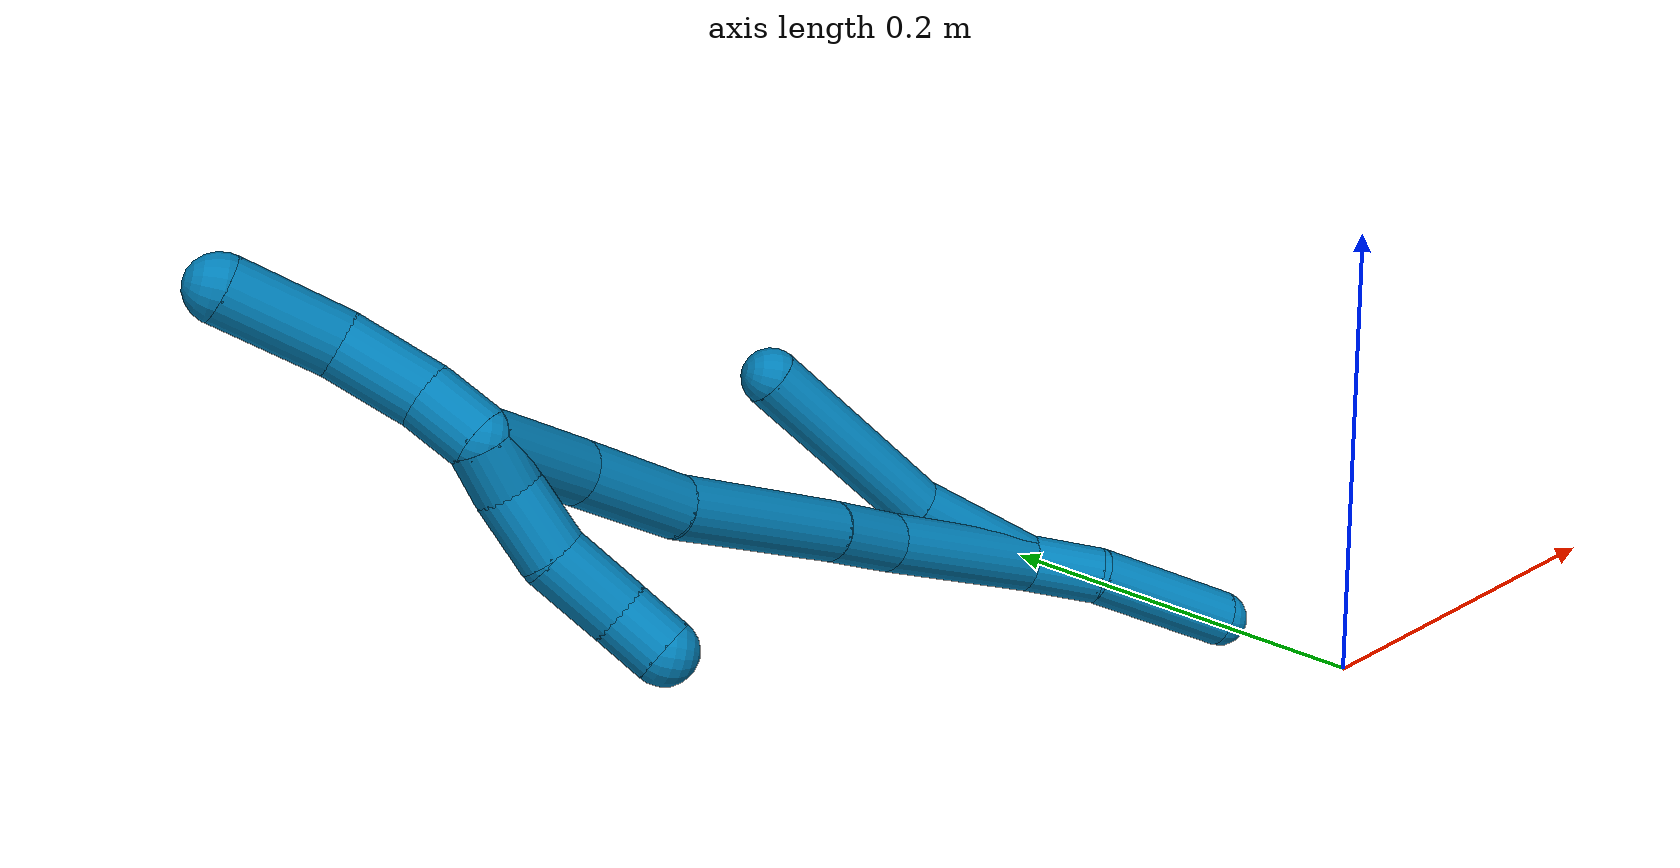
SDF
<sdf version="1.7">
 <world name="default">
  <model name="9">
   <static>0</static>
   <link name="9">
    <collision name="collision-cylinder-e_1_2_8">
     <pose>-0.006701 -0.003823 0.029467 0.129017 -0.221822 -0.014388</pose>
     <geometry><cylinder><radius>0.0125</radius><length>0.06092</length></cylinder></geometry>
     <surface>
      <friction><ode><mu>1.16</mu><mu2>1.16</mu2><slip1>0</slip1><slip2>0</slip2></ode></friction>
      <contact><ode><kp>1e+06</kp><kd>1</kd><max_vel>0</max_vel><min_depth>0.001</min_depth></ode></contact>
     </surface>
    </collision>
    <visual name="visual-cylinder-e_1_2_8">
     <pose>-0.006701 -0.003823 0.029467 0.129017 -0.221822 -0.014388</pose>
     <geometry><cylinder><radius>0.0125</radius><length>0.06092</length></cylinder></geometry>
     <material><ambient>0 0.490196 0.709804 1</ambient></material>
    </visual>
    <collision name="collision-cylinder-e_2_8_6">
     <pose>-0.031134 -0.017806 0.098509 0.251302 -0.409435 -0.052441</pose>
     <geometry><cylinder><radius>0.0125</radius><length>0.08908</length></cylinder></geometry>
     <surface>
      <friction><ode><mu>1.16</mu><mu2>1.16</mu2><slip1>0</slip1><slip2>0</slip2></ode></friction>
      <contact><ode><kp>1e+06</kp><kd>1</kd><max_vel>0</max_vel><min_depth>0.001</min_depth></ode></contact>
     </surface>
    </collision>
    <visual name="visual-cylinder-e_2_8_6">
     <pose>-0.031134 -0.017806 0.098509 0.251302 -0.409435 -0.052441</pose>
     <geometry><cylinder><radius>0.0125</radius><length>0.08908</length></cylinder></geometry>
     <material><ambient>0 0.490196 0.709804 1</ambient></material>
    </visual>
    <collision name="collision-cylinder-e_1_2_9">
     <pose>-0.003041 0.003278 -0.016124 -2.941 -0.182768 1.47728</pose>
     <geometry><cylinder><radius>0.0125</radius><length>0.033465</length></cylinder></geometry>
     <surface>
      <friction><ode><mu>1.16</mu><mu2>1.16</mu2><slip1>0</slip1><slip2>0</slip2></ode></friction>
      <contact><ode><kp>1e+06</kp><kd>1</kd><max_vel>0</max_vel><min_depth>0.001</min_depth></ode></contact>
     </surface>
    </collision>
    <visual name="visual-cylinder-e_1_2_9">
     <pose>-0.003041 0.003278 -0.016124 -2.941 -0.182768 1.47728</pose>
     <geometry><cylinder><radius>0.0125</radius><length>0.033465</length></cylinder></geometry>
     <material><ambient>0 0.490196 0.709804 1</ambient></material>
    </visual>
    <collision name="collision-cylinder-e_2_9_5">
     <pose>-0.003639 0.010363 -0.065206 -3.02664 0.073516 -1.13733</pose>
     <geometry><cylinder><radius>0.0125</radius><length>0.066535</length></cylinder></geometry>
     <surface>
      <friction><ode><mu>1.16</mu><mu2>1.16</mu2><slip1>0</slip1><slip2>0</slip2></ode></friction>
      <contact><ode><kp>1e+06</kp><kd>1</kd><max_vel>0</max_vel><min_depth>0.001</min_depth></ode></contact>
     </surface>
    </collision>
    <visual name="visual-cylinder-e_2_9_5">
     <pose>-0.003639 0.010363 -0.065206 -3.02664 0.073516 -1.13733</pose>
     <geometry><cylinder><radius>0.0125</radius><length>0.066535</length></cylinder></geometry>
     <material><ambient>0 0.490196 0.709804 1</ambient></material>
    </visual>
    <collision name="collision-cylinder-e_1_2_10">
     <pose>-0.007549 0.010568 0.039581 -0.260898 -0.182232 0.023973</pose>
     <geometry><cylinder><radius>0.0125</radius><length>0.083315</length></cylinder></geometry>
     <surface>
      <friction><ode><mu>1.16</mu><mu2>1.16</mu2><slip1>0</slip1><slip2>0</slip2></ode></friction>
      <contact><ode><kp>1e+06</kp><kd>1</kd><max_vel>0</max_vel><min_depth>0.001</min_depth></ode></contact>
     </surface>
    </collision>
    <visual name="visual-cylinder-e_1_2_10">
     <pose>-0.007549 0.010568 0.039581 -0.260898 -0.182232 0.023973</pose>
     <geometry><cylinder><radius>0.0125</radius><length>0.083315</length></cylinder></geometry>
     <material><ambient>0 0.490196 0.709804 1</ambient></material>
    </visual>
    <collision name="collision-cylinder-e_2_10_11">
     <pose>-0.020004 0.026761 0.095209 -0.337245 -0.280855 0.04812</pose>
     <geometry><cylinder><radius>0.0125</radius><length>0.035394</length></cylinder></geometry>
     <surface>
      <friction><ode><mu>1.16</mu><mu2>1.16</mu2><slip1>0</slip1><slip2>0</slip2></ode></friction>
      <contact><ode><kp>1e+06</kp><kd>1</kd><max_vel>0</max_vel><min_depth>0.001</min_depth></ode></contact>
     </surface>
    </collision>
    <visual name="visual-cylinder-e_2_10_11">
     <pose>-0.020004 0.026761 0.095209 -0.337245 -0.280855 0.04812</pose>
     <geometry><cylinder><radius>0.0125</radius><length>0.035394</length></cylinder></geometry>
     <material><ambient>0 0.490196 0.709804 1</ambient></material>
    </visual>
    <collision name="collision-cylinder-e_3_11_12">
     <pose>-0.034923 0.045388 0.149792 -0.325358 -0.241406 0.03981</pose>
     <geometry><cylinder><radius>0.0125</radius><length>0.083771</length></cylinder></geometry>
     <surface>
      <friction><ode><mu>1.16</mu><mu2>1.16</mu2><slip1>0</slip1><slip2>0</slip2></ode></friction>
      <contact><ode><kp>1e+06</kp><kd>1</kd><max_vel>0</max_vel><min_depth>0.001</min_depth></ode></contact>
     </surface>
    </collision>
    <visual name="visual-cylinder-e_3_11_12">
     <pose>-0.034923 0.045388 0.149792 -0.325358 -0.241406 0.03981</pose>
     <geometry><cylinder><radius>0.0125</radius><length>0.083771</length></cylinder></geometry>
     <material><ambient>0 0.490196 0.709804 1</ambient></material>
    </visual>
    <collision name="collision-cylinder-e_4_12_13">
     <pose>-0.053364 0.063752 0.210982 -0.232463 -0.34734 0.040962</pose>
     <geometry><cylinder><radius>0.0125</radius><length>0.049516</length></cylinder></geometry>
     <surface>
      <friction><ode><mu>1.16</mu><mu2>1.16</mu2><slip1>0</slip1><slip2>0</slip2></ode></friction>
      <contact><ode><kp>1e+06</kp><kd>1</kd><max_vel>0</max_vel><min_depth>0.001</min_depth></ode></contact>
     </surface>
    </collision>
    <visual name="visual-cylinder-e_4_12_13">
     <pose>-0.053364 0.063752 0.210982 -0.232463 -0.34734 0.040962</pose>
     <geometry><cylinder><radius>0.0125</radius><length>0.049516</length></cylinder></geometry>
     <material><ambient>0 0.490196 0.709804 1</ambient></material>
    </visual>
    <collision name="collision-cylinder-e_5_13_1">
     <pose>-0.071383 0.07692 0.254206 -0.362659 -0.411123 0.076419</pose>
     <geometry><cylinder><radius>0.0125</radius><length>0.048004</length></cylinder></geometry>
     <surface>
      <friction><ode><mu>1.16</mu><mu2>1.16</mu2><slip1>0</slip1><slip2>0</slip2></ode></friction>
      <contact><ode><kp>1e+06</kp><kd>1</kd><max_vel>0</max_vel><min_depth>0.001</min_depth></ode></contact>
     </surface>
    </collision>
    <visual name="visual-cylinder-e_5_13_1">
     <pose>-0.071383 0.07692 0.254206 -0.362659 -0.411123 0.076419</pose>
     <geometry><cylinder><radius>0.0125</radius><length>0.048004</length></cylinder></geometry>
     <material><ambient>0 0.490196 0.709804 1</ambient></material>
    </visual>
    <collision name="collision-cylinder-e_1_1_14">
     <pose>-0.081727 0.077004 0.2843 0.681294 -0.061179 -0.021692</pose>
     <geometry><cylinder><radius>0.0125</radius><length>0.024566</length></cylinder></geometry>
     <surface>
      <friction><ode><mu>1.16</mu><mu2>1.16</mu2><slip1>0</slip1><slip2>0</slip2></ode></friction>
      <contact><ode><kp>1e+06</kp><kd>1</kd><max_vel>0</max_vel><min_depth>0.001</min_depth></ode></contact>
     </surface>
    </collision>
    <visual name="visual-cylinder-e_1_1_14">
     <pose>-0.081727 0.077004 0.2843 0.681294 -0.061179 -0.021692</pose>
     <geometry><cylinder><radius>0.0125</radius><length>0.024566</length></cylinder></geometry>
     <material><ambient>0 0.490196 0.709804 1</ambient></material>
    </visual>
    <collision name="collision-cylinder-e_2_14_15">
     <pose>-0.0842 0.062302 0.30894 0.432611 -0.103095 -0.022674</pose>
     <geometry><cylinder><radius>0.0125</radius><length>0.033478</length></cylinder></geometry>
     <surface>
      <friction><ode><mu>1.16</mu><mu2>1.16</mu2><slip1>0</slip1><slip2>0</slip2></ode></friction>
      <contact><ode><kp>1e+06</kp><kd>1</kd><max_vel>0</max_vel><min_depth>0.001</min_depth></ode></contact>
     </surface>
    </collision>
    <visual name="visual-cylinder-e_2_14_15">
     <pose>-0.0842 0.062302 0.30894 0.432611 -0.103095 -0.022674</pose>
     <geometry><cylinder><radius>0.0125</radius><length>0.033478</length></cylinder></geometry>
     <material><ambient>0 0.490196 0.709804 1</ambient></material>
    </visual>
    <collision name="collision-cylinder-e_3_15_4">
     <pose>-0.090164 0.052712 0.344434 0.127356 -0.203588 -0.013026</pose>
     <geometry><cylinder><radius>0.0125</radius><length>0.041956</length></cylinder></geometry>
     <surface>
      <friction><ode><mu>1.16</mu><mu2>1.16</mu2><slip1>0</slip1><slip2>0</slip2></ode></friction>
      <contact><ode><kp>1e+06</kp><kd>1</kd><max_vel>0</max_vel><min_depth>0.001</min_depth></ode></contact>
     </surface>
    </collision>
    <visual name="visual-cylinder-e_3_15_4">
     <pose>-0.090164 0.052712 0.344434 0.127356 -0.203588 -0.013026</pose>
     <geometry><cylinder><radius>0.0125</radius><length>0.041956</length></cylinder></geometry>
     <material><ambient>0 0.490196 0.709804 1</ambient></material>
    </visual>
    <collision name="collision-cylinder-e_1_1_16">
     <pose>-0.073996 0.088063 0.268 -2.68402 0.745849 -2.06781</pose>
     <geometry><cylinder><radius>0.0125</radius><length>0.020569</length></cylinder></geometry>
     <surface>
      <friction><ode><mu>1.16</mu><mu2>1.16</mu2><slip1>0</slip1><slip2>0</slip2></ode></friction>
      <contact><ode><kp>1e+06</kp><kd>1</kd><max_vel>0</max_vel><min_depth>0.001</min_depth></ode></contact>
     </surface>
    </collision>
    <visual name="visual-cylinder-e_1_1_16">
     <pose>-0.073996 0.088063 0.268 -2.68402 0.745849 -2.06781</pose>
     <geometry><cylinder><radius>0.0125</radius><length>0.020569</length></cylinder></geometry>
     <material><ambient>0 0.490196 0.709804 1</ambient></material>
    </visual>
    <collision name="collision-cylinder-e_2_16_17">
     <pose>-0.06018 0.098544 0.251472 -2.50926 0.514762 -1.35509</pose>
     <geometry><cylinder><radius>0.0125</radius><length>0.027775</length></cylinder></geometry>
     <surface>
      <friction><ode><mu>1.16</mu><mu2>1.16</mu2><slip1>0</slip1><slip2>0</slip2></ode></friction>
      <contact><ode><kp>1e+06</kp><kd>1</kd><max_vel>0</max_vel><min_depth>0.001</min_depth></ode></contact>
     </surface>
    </collision>
    <visual name="visual-cylinder-e_2_16_17">
     <pose>-0.06018 0.098544 0.251472 -2.50926 0.514762 -1.35509</pose>
     <geometry><cylinder><radius>0.0125</radius><length>0.027775</length></cylinder></geometry>
     <material><ambient>0 0.490196 0.709804 1</ambient></material>
    </visual>
    <collision name="collision-cylinder-e_3_17_18">
     <pose>-0.048732 0.112301 0.228519 -2.67725 0.302649 -1.14564</pose>
     <geometry><cylinder><radius>0.0125</radius><length>0.030937</length></cylinder></geometry>
     <surface>
      <friction><ode><mu>1.16</mu><mu2>1.16</mu2><slip1>0</slip1><slip2>0</slip2></ode></friction>
      <contact><ode><kp>1e+06</kp><kd>1</kd><max_vel>0</max_vel><min_depth>0.001</min_depth></ode></contact>
     </surface>
    </collision>
    <visual name="visual-cylinder-e_3_17_18">
     <pose>-0.048732 0.112301 0.228519 -2.67725 0.302649 -1.14564</pose>
     <geometry><cylinder><radius>0.0125</radius><length>0.030937</length></cylinder></geometry>
     <material><ambient>0 0.490196 0.709804 1</ambient></material>
    </visual>
    <collision name="collision-cylinder-e_4_18_3">
     <pose>-0.042489 0.124992 0.20709 -2.50529 0.158279 -0.472601</pose>
     <geometry><cylinder><radius>0.0125</radius><length>0.020719</length></cylinder></geometry>
     <surface>
      <friction><ode><mu>1.16</mu><mu2>1.16</mu2><slip1>0</slip1><slip2>0</slip2></ode></friction>
      <contact><ode><kp>1e+06</kp><kd>1</kd><max_vel>0</max_vel><min_depth>0.001</min_depth></ode></contact>
     </surface>
    </collision>
    <visual name="visual-cylinder-e_4_18_3">
     <pose>-0.042489 0.124992 0.20709 -2.50529 0.158279 -0.472601</pose>
     <geometry><cylinder><radius>0.0125</radius><length>0.020719</length></cylinder></geometry>
     <material><ambient>0 0.490196 0.709804 1</ambient></material>
    </visual>
    <collision name="collision-sphere-3">
     <pose>-0.040856 0.131071 0.198862 0 -0 0</pose>
     <geometry><sphere><radius>0.0125</radius></sphere></geometry>
     <surface>
      <friction><ode><mu>1.16</mu><mu2>1.16</mu2><slip1>0</slip1><slip2>0</slip2></ode></friction>
      <contact><ode><kp>1e+06</kp><kd>1</kd><max_vel>0</max_vel><min_depth>0.001</min_depth></ode></contact>
     </surface>
    </collision>
    <visual name="visual-sphere-3">
     <pose>-0.040856 0.131071 0.198862 0 -0 0</pose>
     <geometry><sphere><radius>0.0125</radius></sphere></geometry>
     <material><ambient>0 0.490196 0.709804 1</ambient></material>
    </visual>
    <collision name="collision-sphere-10">
     <pose>-0.015099 0.021135 0.079163 0 -0 0</pose>
     <geometry><sphere><radius>0.0125</radius></sphere></geometry>
     <surface>
      <friction><ode><mu>1.16</mu><mu2>1.16</mu2><slip1>0</slip1><slip2>0</slip2></ode></friction>
      <contact><ode><kp>1e+06</kp><kd>1</kd><max_vel>0</max_vel><min_depth>0.001</min_depth></ode></contact>
     </surface>
    </collision>
    <visual name="visual-sphere-10">
     <pose>-0.015099 0.021135 0.079163 0 -0 0</pose>
     <geometry><sphere><radius>0.0125</radius></sphere></geometry>
     <material><ambient>0 0.490196 0.709804 1</ambient></material>
    </visual>
    <collision name="collision-sphere-5">
     <pose>-0.001195 0.014168 -0.098165 0 -0 0</pose>
     <geometry><sphere><radius>0.0125</radius></sphere></geometry>
     <surface>
      <friction><ode><mu>1.16</mu><mu2>1.16</mu2><slip1>0</slip1><slip2>0</slip2></ode></friction>
      <contact><ode><kp>1e+06</kp><kd>1</kd><max_vel>0</max_vel><min_depth>0.001</min_depth></ode></contact>
     </surface>
    </collision>
    <visual name="visual-sphere-5">
     <pose>-0.001195 0.014168 -0.098165 0 -0 0</pose>
     <geometry><sphere><radius>0.0125</radius></sphere></geometry>
     <material><ambient>0 0.490196 0.709804 1</ambient></material>
    </visual>
    <collision name="collision-sphere-6">
     <pose>-0.048865 -0.027966 0.138084 0 -0 0</pose>
     <geometry><sphere><radius>0.0125</radius></sphere></geometry>
     <surface>
      <friction><ode><mu>1.16</mu><mu2>1.16</mu2><slip1>0</slip1><slip2>0</slip2></ode></friction>
      <contact><ode><kp>1e+06</kp><kd>1</kd><max_vel>0</max_vel><min_depth>0.001</min_depth></ode></contact>
     </surface>
    </collision>
    <visual name="visual-sphere-6">
     <pose>-0.048865 -0.027966 0.138084 0 -0 0</pose>
     <geometry><sphere><radius>0.0125</radius></sphere></geometry>
     <material><ambient>0 0.490196 0.709804 1</ambient></material>
    </visual>
    <collision name="collision-sphere-9">
     <pose>-0.006082 0.006557 -0.032248 0 -0 0</pose>
     <geometry><sphere><radius>0.0125</radius></sphere></geometry>
     <surface>
      <friction><ode><mu>1.16</mu><mu2>1.16</mu2><slip1>0</slip1><slip2>0</slip2></ode></friction>
      <contact><ode><kp>1e+06</kp><kd>1</kd><max_vel>0</max_vel><min_depth>0.001</min_depth></ode></contact>
     </surface>
    </collision>
    <visual name="visual-sphere-9">
     <pose>-0.006082 0.006557 -0.032248 0 -0 0</pose>
     <geometry><sphere><radius>0.0125</radius></sphere></geometry>
     <material><ambient>0 0.490196 0.709804 1</ambient></material>
    </visual>
    <collision name="collision-sphere-2">
     <geometry><sphere><radius>0.0125</radius></sphere></geometry>
     <surface>
      <friction><ode><mu>1.16</mu><mu2>1.16</mu2><slip1>0</slip1><slip2>0</slip2></ode></friction>
      <contact><ode><kp>1e+06</kp><kd>1</kd><max_vel>0</max_vel><min_depth>0.001</min_depth></ode></contact>
     </surface>
    </collision>
    <visual name="visual-sphere-2">
     <geometry><sphere><radius>0.0125</radius></sphere></geometry>
     <material><ambient>0 0.490196 0.709804 1</ambient></material>
    </visual>
    <collision name="collision-sphere-8">
     <pose>-0.013403 -0.007646 0.058934 0 -0 0</pose>
     <geometry><sphere><radius>0.0125</radius></sphere></geometry>
     <surface>
      <friction><ode><mu>1.16</mu><mu2>1.16</mu2><slip1>0</slip1><slip2>0</slip2></ode></friction>
      <contact><ode><kp>1e+06</kp><kd>1</kd><max_vel>0</max_vel><min_depth>0.001</min_depth></ode></contact>
     </surface>
    </collision>
    <visual name="visual-sphere-8">
     <pose>-0.013403 -0.007646 0.058934 0 -0 0</pose>
     <geometry><sphere><radius>0.0125</radius></sphere></geometry>
     <material><ambient>0 0.490196 0.709804 1</ambient></material>
    </visual>
    <collision name="collision-sphere-11">
     <pose>-0.024909 0.032388 0.111255 0 -0 0</pose>
     <geometry><sphere><radius>0.0125</radius></sphere></geometry>
     <surface>
      <friction><ode><mu>1.16</mu><mu2>1.16</mu2><slip1>0</slip1><slip2>0</slip2></ode></friction>
      <contact><ode><kp>1e+06</kp><kd>1</kd><max_vel>0</max_vel><min_depth>0.001</min_depth></ode></contact>
     </surface>
    </collision>
    <visual name="visual-sphere-11">
     <pose>-0.024909 0.032388 0.111255 0 -0 0</pose>
     <geometry><sphere><radius>0.0125</radius></sphere></geometry>
     <material><ambient>0 0.490196 0.709804 1</ambient></material>
    </visual>
    <collision name="collision-sphere-12">
     <pose>-0.044936 0.058389 0.188329 0 -0 0</pose>
     <geometry><sphere><radius>0.0125</radius></sphere></geometry>
     <surface>
      <friction><ode><mu>1.16</mu><mu2>1.16</mu2><slip1>0</slip1><slip2>0</slip2></ode></friction>
      <contact><ode><kp>1e+06</kp><kd>1</kd><max_vel>0</max_vel><min_depth>0.001</min_depth></ode></contact>
     </surface>
    </collision>
    <visual name="visual-sphere-12">
     <pose>-0.044936 0.058389 0.188329 0 -0 0</pose>
     <geometry><sphere><radius>0.0125</radius></sphere></geometry>
     <material><ambient>0 0.490196 0.709804 1</ambient></material>
    </visual>
    <collision name="collision-sphere-13">
     <pose>-0.061791 0.069115 0.233635 0 -0 0</pose>
     <geometry><sphere><radius>0.0125</radius></sphere></geometry>
     <surface>
      <friction><ode><mu>1.16</mu><mu2>1.16</mu2><slip1>0</slip1><slip2>0</slip2></ode></friction>
      <contact><ode><kp>1e+06</kp><kd>1</kd><max_vel>0</max_vel><min_depth>0.001</min_depth></ode></contact>
     </surface>
    </collision>
    <visual name="visual-sphere-13">
     <pose>-0.061791 0.069115 0.233635 0 -0 0</pose>
     <geometry><sphere><radius>0.0125</radius></sphere></geometry>
     <material><ambient>0 0.490196 0.709804 1</ambient></material>
    </visual>
    <collision name="collision-sphere-1">
     <pose>-0.080976 0.084725 0.274777 0 -0 0</pose>
     <geometry><sphere><radius>0.0125</radius></sphere></geometry>
     <surface>
      <friction><ode><mu>1.16</mu><mu2>1.16</mu2><slip1>0</slip1><slip2>0</slip2></ode></friction>
      <contact><ode><kp>1e+06</kp><kd>1</kd><max_vel>0</max_vel><min_depth>0.001</min_depth></ode></contact>
     </surface>
    </collision>
    <visual name="visual-sphere-1">
     <pose>-0.080976 0.084725 0.274777 0 -0 0</pose>
     <geometry><sphere><radius>0.0125</radius></sphere></geometry>
     <material><ambient>0 0.490196 0.709804 1</ambient></material>
    </visual>
    <collision name="collision-sphere-18">
     <pose>-0.044122 0.118913 0.215318 0 -0 0</pose>
     <geometry><sphere><radius>0.0125</radius></sphere></geometry>
     <surface>
      <friction><ode><mu>1.16</mu><mu2>1.16</mu2><slip1>0</slip1><slip2>0</slip2></ode></friction>
      <contact><ode><kp>1e+06</kp><kd>1</kd><max_vel>0</max_vel><min_depth>0.001</min_depth></ode></contact>
     </surface>
    </collision>
    <visual name="visual-sphere-18">
     <pose>-0.044122 0.118913 0.215318 0 -0 0</pose>
     <geometry><sphere><radius>0.0125</radius></sphere></geometry>
     <material><ambient>0 0.490196 0.709804 1</ambient></material>
    </visual>
    <collision name="collision-sphere-14">
     <pose>-0.082478 0.069283 0.293823 0 -0 0</pose>
     <geometry><sphere><radius>0.0125</radius></sphere></geometry>
     <surface>
      <friction><ode><mu>1.16</mu><mu2>1.16</mu2><slip1>0</slip1><slip2>0</slip2></ode></friction>
      <contact><ode><kp>1e+06</kp><kd>1</kd><max_vel>0</max_vel><min_depth>0.001</min_depth></ode></contact>
     </surface>
    </collision>
    <visual name="visual-sphere-14">
     <pose>-0.082478 0.069283 0.293823 0 -0 0</pose>
     <geometry><sphere><radius>0.0125</radius></sphere></geometry>
     <material><ambient>0 0.490196 0.709804 1</ambient></material>
    </visual>
    <collision name="collision-sphere-15">
     <pose>-0.085923 0.055322 0.324056 0 -0 0</pose>
     <geometry><sphere><radius>0.0125</radius></sphere></geometry>
     <surface>
      <friction><ode><mu>1.16</mu><mu2>1.16</mu2><slip1>0</slip1><slip2>0</slip2></ode></friction>
      <contact><ode><kp>1e+06</kp><kd>1</kd><max_vel>0</max_vel><min_depth>0.001</min_depth></ode></contact>
     </surface>
    </collision>
    <visual name="visual-sphere-15">
     <pose>-0.085923 0.055322 0.324056 0 -0 0</pose>
     <geometry><sphere><radius>0.0125</radius></sphere></geometry>
     <material><ambient>0 0.490196 0.709804 1</ambient></material>
    </visual>
    <collision name="collision-sphere-4">
     <pose>-0.094406 0.050103 0.364812 0 -0 0</pose>
     <geometry><sphere><radius>0.0125</radius></sphere></geometry>
     <surface>
      <friction><ode><mu>1.16</mu><mu2>1.16</mu2><slip1>0</slip1><slip2>0</slip2></ode></friction>
      <contact><ode><kp>1e+06</kp><kd>1</kd><max_vel>0</max_vel><min_depth>0.001</min_depth></ode></contact>
     </surface>
    </collision>
    <visual name="visual-sphere-4">
     <pose>-0.094406 0.050103 0.364812 0 -0 0</pose>
     <geometry><sphere><radius>0.0125</radius></sphere></geometry>
     <material><ambient>0 0.490196 0.709804 1</ambient></material>
    </visual>
    <collision name="collision-sphere-16">
     <pose>-0.067017 0.0914 0.261223 0 -0 0</pose>
     <geometry><sphere><radius>0.0125</radius></sphere></geometry>
     <surface>
      <friction><ode><mu>1.16</mu><mu2>1.16</mu2><slip1>0</slip1><slip2>0</slip2></ode></friction>
      <contact><ode><kp>1e+06</kp><kd>1</kd><max_vel>0</max_vel><min_depth>0.001</min_depth></ode></contact>
     </surface>
    </collision>
    <visual name="visual-sphere-16">
     <pose>-0.067017 0.0914 0.261223 0 -0 0</pose>
     <geometry><sphere><radius>0.0125</radius></sphere></geometry>
     <material><ambient>0 0.490196 0.709804 1</ambient></material>
    </visual>
    <collision name="collision-sphere-17">
     <pose>-0.053343 0.105689 0.241721 0 -0 0</pose>
     <geometry><sphere><radius>0.0125</radius></sphere></geometry>
     <surface>
      <friction><ode><mu>1.16</mu><mu2>1.16</mu2><slip1>0</slip1><slip2>0</slip2></ode></friction>
      <contact><ode><kp>1e+06</kp><kd>1</kd><max_vel>0</max_vel><min_depth>0.001</min_depth></ode></contact>
     </surface>
    </collision>
    <visual name="visual-sphere-17">
     <pose>-0.053343 0.105689 0.241721 0 -0 0</pose>
     <geometry><sphere><radius>0.0125</radius></sphere></geometry>
     <material><ambient>0 0.490196 0.709804 1</ambient></material>
    </visual>
    <inertial>
     <pose>-0.037397 0.037681 0.137591 0 -0 0</pose>
     <mass>0.75</mass>
     <inertia><ixx>0.0002</ixx><ixy>0</ixy><ixz>0</ixz><iyy>0.00019</iyy><iyz>0</iyz><izz>6e-05</izz></inertia>
    </inertial>
   </link>
   <pose>-0.091816 0.109235 0.04854 -0.881004 1.02349 1.76846</pose>
  </model>
 </world>
</sdf>
